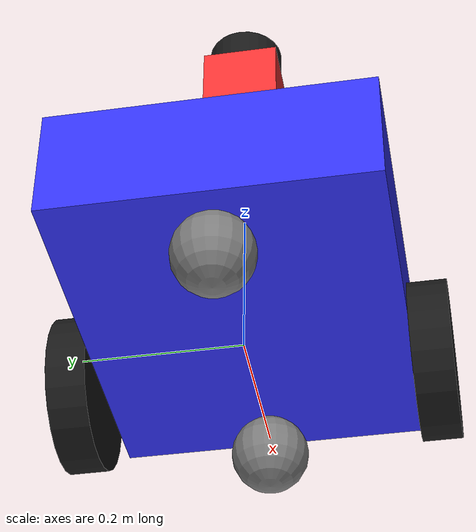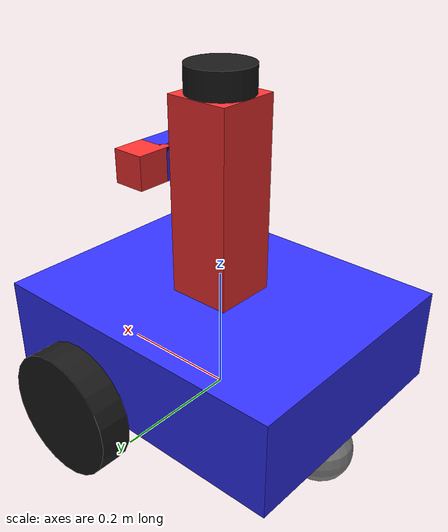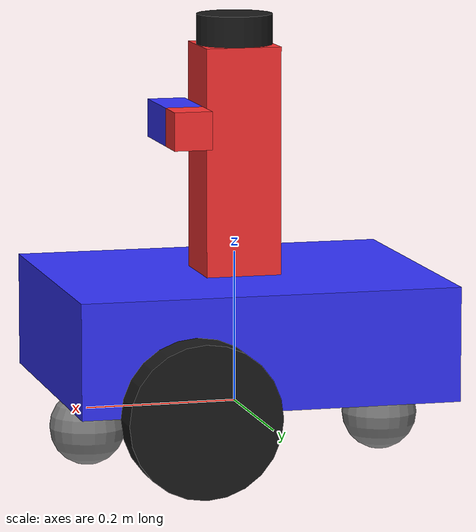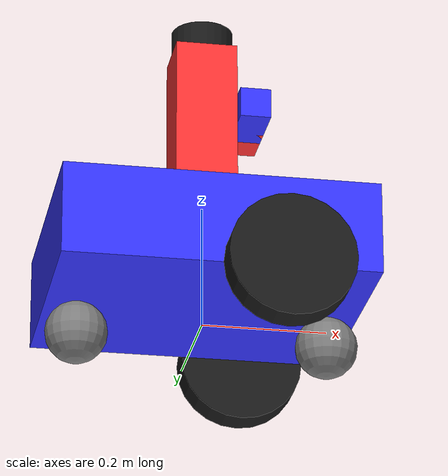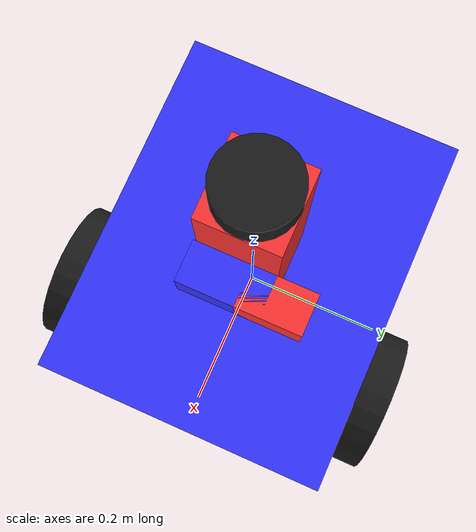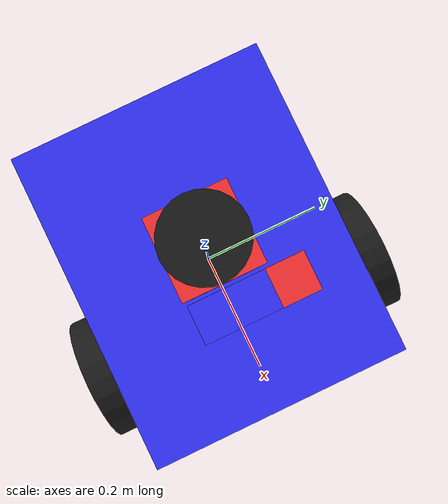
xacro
<?xml version="1.0"?>
<robot name="rescue_robot" xmlns:xacro="http://www.ros.org/wiki/xacro">

  <!-- Define properties -->
  <xacro:property name="base_width" value="0.4"/>
  <xacro:property name="base_length" value="0.5"/>
  <xacro:property name="base_height" value="0.15"/>
  <xacro:property name="wheel_radius" value="0.1"/>
  <xacro:property name="wheel_width" value="0.05"/>
  <xacro:property name="wheel_separation" value="0.4"/>
  <xacro:property name="wheel_offset_x" value="0.1"/>

  <!-- Materials -->
  <material name="blue">
    <color rgba="0.2 0.2 1.0 1.0"/>
  </material>

  <material name="black">
    <color rgba="0.1 0.1 0.1 1.0"/>
  </material>

  <material name="red">
    <color rgba="1.0 0.2 0.2 1.0"/>
  </material>

  <material name="gray">
    <color rgba="0.5 0.5 0.5 1.0"/>
  </material>

  <!-- Base Link -->
  <link name="base_link">
    <visual>
      <geometry>
        <box size="${base_length} ${base_width} ${base_height}"/>
      </geometry>
      <material name="blue"/>
    </visual>
    <collision>
      <geometry>
        <box size="${base_length} ${base_width} ${base_height}"/>
      </geometry>
    </collision>
    <inertial>
      <mass value="20.0"/>
      <inertia ixx="0.4" ixy="0.0" ixz="0.0" iyy="0.6" iyz="0.0" izz="0.8"/>
    </inertial>
  </link>

  <!-- Base Footprint (for navigation) -->
  <link name="base_footprint"/>

  <joint name="base_footprint_joint" type="fixed">
    <parent link="base_footprint"/>
    <child link="base_link"/>
    <origin xyz="0 0 ${wheel_radius}" rpy="0 0 0"/>
  </joint>

  <!-- Left Wheel -->
  <link name="left_wheel">
    <visual>
      <origin xyz="0 0 0" rpy="1.5708 0 0"/>
      <geometry>
        <cylinder radius="${wheel_radius}" length="${wheel_width}"/>
      </geometry>
      <material name="black"/>
    </visual>
    <collision>
      <origin xyz="0 0 0" rpy="1.5708 0 0"/>
      <geometry>
        <cylinder radius="${wheel_radius}" length="${wheel_width}"/>
      </geometry>
    </collision>
    <inertial>
      <mass value="2.0"/>
      <inertia ixx="0.01" ixy="0.0" ixz="0.0" iyy="0.01" iyz="0.0" izz="0.01"/>
    </inertial>
  </link>

  <joint name="left_wheel_joint" type="continuous">
    <parent link="base_link"/>
    <child link="left_wheel"/>
    <origin xyz="${wheel_offset_x} ${wheel_separation/2 + wheel_width/2} ${-base_height/2}" rpy="0 0 0"/>
    <axis xyz="0 1 0"/>
  </joint>

  <!-- Right Wheel -->
  <link name="right_wheel">
    <visual>
      <origin xyz="0 0 0" rpy="1.5708 0 0"/>
      <geometry>
        <cylinder radius="${wheel_radius}" length="${wheel_width}"/>
      </geometry>
      <material name="black"/>
    </visual>
    <collision>
      <origin xyz="0 0 0" rpy="1.5708 0 0"/>
      <geometry>
        <cylinder radius="${wheel_radius}" length="${wheel_width}"/>
      </geometry>
    </collision>
    <inertial>
      <mass value="2.0"/>
      <inertia ixx="0.01" ixy="0.0" ixz="0.0" iyy="0.01" iyz="0.0" izz="0.01"/>
    </inertial>
  </link>

  <joint name="right_wheel_joint" type="continuous">
    <parent link="base_link"/>
    <child link="right_wheel"/>
    <origin xyz="${wheel_offset_x} ${-wheel_separation/2 - wheel_width/2} ${-base_height/2}" rpy="0 0 0"/>
    <axis xyz="0 1 0"/>
  </joint>

  <!-- Caster Wheel Front -->
  <link name="caster_wheel_front">
    <visual>
      <geometry>
        <sphere radius="0.05"/>
      </geometry>
      <material name="gray"/>
    </visual>
    <collision>
      <geometry>
        <sphere radius="0.05"/>
      </geometry>
    </collision>
    <inertial>
      <mass value="0.5"/>
      <inertia ixx="0.001" ixy="0.0" ixz="0.0" iyy="0.001" iyz="0.0" izz="0.001"/>
    </inertial>
  </link>

  <joint name="caster_wheel_front_joint" type="fixed">
    <parent link="base_link"/>
    <child link="caster_wheel_front"/>
    <origin xyz="0.2 0 ${-base_height/2 - 0.05}" rpy="0 0 0"/>
  </joint>

  <!-- Caster Wheel Back -->
  <link name="caster_wheel_back">
    <visual>
      <geometry>
        <sphere radius="0.05"/>
      </geometry>
      <material name="gray"/>
    </visual>
    <collision>
      <geometry>
        <sphere radius="0.05"/>
      </geometry>
    </collision>
    <inertial>
      <mass value="0.5"/>
      <inertia ixx="0.001" ixy="0.0" ixz="0.0" iyy="0.001" iyz="0.0" izz="0.001"/>
    </inertial>
  </link>

  <joint name="caster_wheel_back_joint" type="fixed">
    <parent link="base_link"/>
    <child link="caster_wheel_back"/>
    <origin xyz="-0.2 0 ${-base_height/2 - 0.05}" rpy="0 0 0"/>
  </joint>

  <!-- Sensor Tower -->
  <link name="sensor_tower">
    <visual>
      <geometry>
        <box size="0.1 0.1 0.3"/>
      </geometry>
      <material name="red"/>
    </visual>
    <collision>
      <geometry>
        <box size="0.1 0.1 0.3"/>
      </geometry>
    </collision>
    <inertial>
      <mass value="1.0"/>
      <inertia ixx="0.01" ixy="0.0" ixz="0.0" iyy="0.01" iyz="0.0" izz="0.01"/>
    </inertial>
  </link>

  <joint name="sensor_tower_joint" type="fixed">
    <parent link="base_link"/>
    <child link="sensor_tower"/>
    <origin xyz="0 0 ${base_height/2 + 0.15}" rpy="0 0 0"/>
  </joint>

  <!-- Laser Scanner -->
  <link name="laser">
    <visual>
      <geometry>
        <cylinder radius="0.05" length="0.04"/>
      </geometry>
      <material name="black"/>
    </visual>
    <collision>
      <geometry>
        <cylinder radius="0.05" length="0.04"/>
      </geometry>
    </collision>
    <inertial>
      <mass value="0.1"/>
      <inertia ixx="0.0001" ixy="0.0" ixz="0.0" iyy="0.0001" iyz="0.0" izz="0.0001"/>
    </inertial>
  </link>

  <joint name="laser_joint" type="fixed">
    <parent link="sensor_tower"/>
    <child link="laser"/>
    <origin xyz="0 0 0.17" rpy="0 0 0"/>
  </joint>

  <!-- RGB Camera -->
  <link name="camera_link">
    <visual>
      <geometry>
        <box size="0.05 0.1 0.05"/>
      </geometry>
      <material name="blue"/>
    </visual>
    <collision>
      <geometry>
        <box size="0.05 0.1 0.05"/>
      </geometry>
    </collision>
    <inertial>
      <mass value="0.1"/>
      <inertia ixx="0.0001" ixy="0.0" ixz="0.0" iyy="0.0001" iyz="0.0" izz="0.0001"/>
    </inertial>
  </link>

  <joint name="camera_joint" type="fixed">
    <parent link="sensor_tower"/>
    <child link="camera_link"/>
    <origin xyz="0.08 0 0.05" rpy="0 0 0"/>
  </joint>

  <!-- Camera Optical Frame -->
  <link name="camera_optical_frame"/>

  <joint name="camera_optical_joint" type="fixed">
    <parent link="camera_link"/>
    <child link="camera_optical_frame"/>
    <origin xyz="0 0 0" rpy="-1.5708 0 -1.5708"/>
  </joint>

  <!-- Thermal Camera -->
  <link name="thermal_camera_link">
    <visual>
      <geometry>
        <box size="0.05 0.08 0.05"/>
      </geometry>
      <material name="red"/>
    </visual>
    <collision>
      <geometry>
        <box size="0.05 0.08 0.05"/>
      </geometry>
    </collision>
    <inertial>
      <mass value="0.1"/>
      <inertia ixx="0.0001" ixy="0.0" ixz="0.0" iyy="0.0001" iyz="0.0" izz="0.0001"/>
    </inertial>
  </link>

  <joint name="thermal_camera_joint" type="fixed">
    <parent link="sensor_tower"/>
    <child link="thermal_camera_link"/>
    <origin xyz="0.08 0.06 0.05" rpy="0 0 0"/>
  </joint>

  <!-- IMU -->
  <link name="imu_link">
    <visual>
      <geometry>
        <box size="0.03 0.03 0.01"/>
      </geometry>
      <material name="gray"/>
    </visual>
    <inertial>
      <mass value="0.01"/>
      <inertia ixx="0.00001" ixy="0.0" ixz="0.0" iyy="0.00001" iyz="0.0" izz="0.00001"/>
    </inertial>
  </link>

  <joint name="imu_joint" type="fixed">
    <parent link="base_link"/>
    <child link="imu_link"/>
    <origin xyz="0 0 ${base_height/2}" rpy="0 0 0"/>
  </joint>

  <!-- Gazebo Plugins -->

  <!-- Differential Drive Controller -->
  <gazebo>
    <plugin name="differential_drive_controller" filename="libgazebo_ros_diff_drive.so">
      <updateRate>50</updateRate>
      <leftJoint>left_wheel_joint</leftJoint>
      <rightJoint>right_wheel_joint</rightJoint>
      <wheelSeparation>${wheel_separation}</wheelSeparation>
      <wheelDiameter>${2*wheel_radius}</wheelDiameter>
      <wheelAcceleration>1.0</wheelAcceleration>
      <wheelTorque>20</wheelTorque>
      <commandTopic>cmd_vel</commandTopic>
      <odometryTopic>odom</odometryTopic>
      <odometryFrame>odom</odometryFrame>
      <robotBaseFrame>base_footprint</robotBaseFrame>
      <publishWheelTF>false</publishWheelTF>
      <publishWheelJointState>true</publishWheelJointState>
      <publishOdomTF>true</publishOdomTF>
      <odometrySource>world</odometrySource>
      <publishTf>1</publishTf>
    </plugin>
  </gazebo>

  <!-- Laser Scanner Plugin -->
  <gazebo reference="laser">
    <sensor type="ray" name="laser_sensor">
      <pose>0 0 0 0 0 0</pose>
      <visualize>true</visualize>
      <update_rate>10</update_rate>
      <ray>
        <scan>
          <horizontal>
            <samples>360</samples>
            <resolution>1</resolution>
            <min_angle>-3.14159</min_angle>
            <max_angle>3.14159</max_angle>
          </horizontal>
        </scan>
        <range>
          <min>0.2</min>
          <max>30.0</max>
          <resolution>0.01</resolution>
        </range>
        <noise>
          <type>gaussian</type>
          <mean>0.0</mean>
          <stddev>0.01</stddev>
        </noise>
      </ray>
      <plugin name="gazebo_ros_laser" filename="libgazebo_ros_laser.so">
        <topicName>scan</topicName>
        <frameName>laser</frameName>
      </plugin>
    </sensor>
  </gazebo>

  <!-- RGB Camera Plugin -->
  <gazebo reference="camera_link">
    <sensor type="camera" name="camera">
      <update_rate>30.0</update_rate>
      <camera name="front_camera">
        <horizontal_fov>1.3962634</horizontal_fov>
        <image>
          <width>640</width>
          <height>480</height>
          <format>R8G8B8</format>
        </image>
        <clip>
          <near>0.02</near>
          <far>300</far>
        </clip>
        <noise>
          <type>gaussian</type>
          <mean>0.0</mean>
          <stddev>0.007</stddev>
        </noise>
      </camera>
      <plugin name="camera_controller" filename="libgazebo_ros_camera.so">
        <alwaysOn>true</alwaysOn>
        <updateRate>30.0</updateRate>
        <cameraName>camera/rgb</cameraName>
        <imageTopicName>image_raw</imageTopicName>
        <cameraInfoTopicName>camera_info</cameraInfoTopicName>
        <frameName>camera_optical_frame</frameName>
        <hackBaseline>0.07</hackBaseline>
        <distortionK1>0.0</distortionK1>
        <distortionK2>0.0</distortionK2>
        <distortionK3>0.0</distortionK3>
        <distortionT1>0.0</distortionT1>
        <distortionT2>0.0</distortionT2>
      </plugin>
    </sensor>
  </gazebo>

  <!-- Thermal Camera Plugin (simulated as grayscale camera) -->
  <gazebo reference="thermal_camera_link">
    <sensor type="camera" name="thermal_camera">
      <update_rate>10.0</update_rate>
      <camera name="thermal">
        <horizontal_fov>1.3962634</horizontal_fov>
        <image>
          <width>320</width>
          <height>240</height>
          <format>L8</format>
        </image>
        <clip>
          <near>0.02</near>
          <far>100</far>
        </clip>
      </camera>
      <plugin name="thermal_camera_controller" filename="libgazebo_ros_camera.so">
        <alwaysOn>true</alwaysOn>
        <updateRate>10.0</updateRate>
        <cameraName>thermal</cameraName>
        <imageTopicName>image_raw</imageTopicName>
        <cameraInfoTopicName>camera_info</cameraInfoTopicName>
        <frameName>thermal_camera_link</frameName>
      </plugin>
    </sensor>
  </gazebo>

  <!-- IMU Plugin -->
  <gazebo reference="imu_link">
    <sensor name="imu_sensor" type="imu">
      <always_on>true</always_on>
      <update_rate>50</update_rate>
      <plugin filename="libgazebo_ros_imu_sensor.so" name="imu_plugin">
        <topicName>imu</topicName>
        <bodyName>imu_link</bodyName>
        <updateRateHZ>50.0</updateRateHZ>
        <gaussianNoise>0.0</gaussianNoise>
        <xyzOffset>0 0 0</xyzOffset>
        <rpyOffset>0 0 0</rpyOffset>
        <frameName>imu_link</frameName>
      </plugin>
    </sensor>
  </gazebo>

  <!-- Material colors for Gazebo -->
  <gazebo reference="base_link">
    <material>Gazebo/Blue</material>
  </gazebo>

  <gazebo reference="left_wheel">
    <material>Gazebo/DarkGrey</material>
    <mu1>1.0</mu1>
    <mu2>1.0</mu2>
  </gazebo>

  <gazebo reference="right_wheel">
    <material>Gazebo/DarkGrey</material>
    <mu1>1.0</mu1>
    <mu2>1.0</mu2>
  </gazebo>

  <gazebo reference="sensor_tower">
    <material>Gazebo/Red</material>
  </gazebo>

  <gazebo reference="caster_wheel_front">
    <material>Gazebo/Grey</material>
    <mu1>0.0</mu1>
    <mu2>0.0</mu2>
  </gazebo>

  <gazebo reference="caster_wheel_back">
    <material>Gazebo/Grey</material>
    <mu1>0.0</mu1>
    <mu2>0.0</mu2>
  </gazebo>

</robot>
